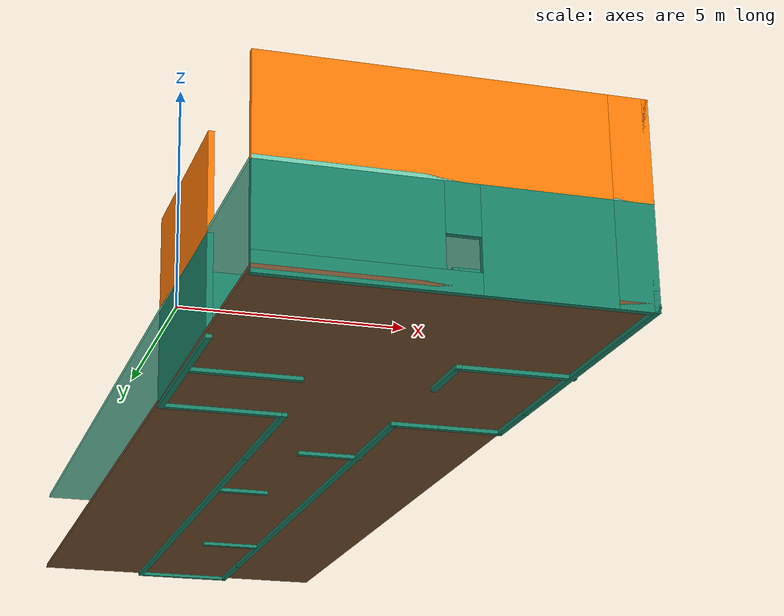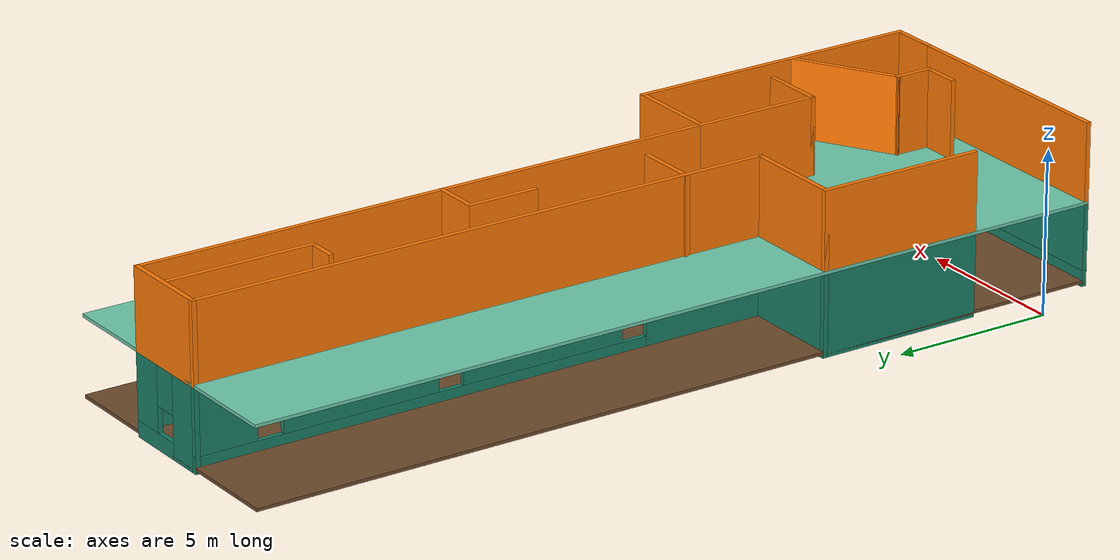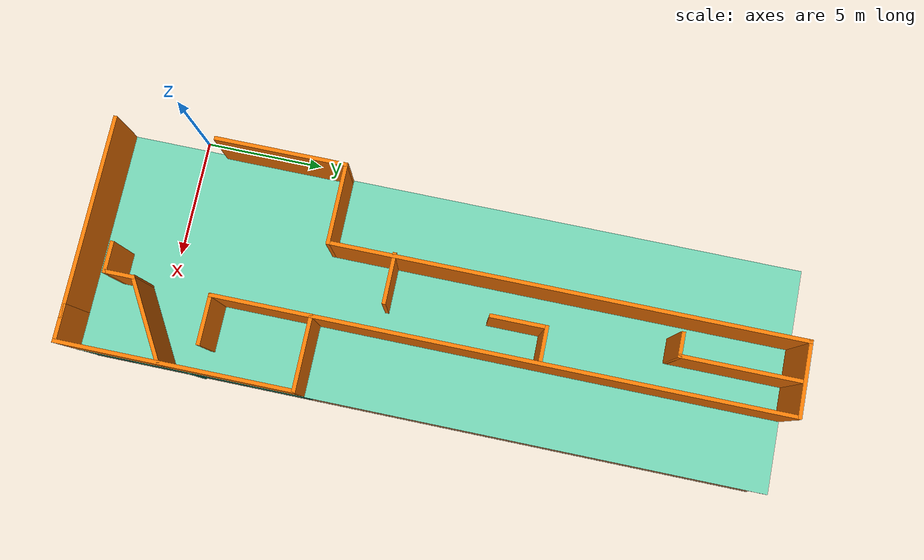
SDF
<?xml version='1.0'?>
<sdf version='1.7'>
  <model name='mulyi_floor_v2'>
    <pose>5.5 11.5 0 0 -0 -1.57</pose>
    <link name='Floor_2'>
      <collision name='Floor_2_Collision'>
        <geometry>
          <box>
            <size>27.6 8.96003 0.1</size>
          </box>
        </geometry>
        <pose>0 0 0.05 0 -0 0</pose>
      </collision>
      <visual name='Floor_2_Visual'>
        <pose>0 0 0.05 0 -0 0</pose>
        <geometry>
          <box>
            <size>27.6 8.96003 0.1</size>
          </box>
        </geometry>
        <material>
          <diffuse>0.435294 0.796078 0.67451 1</diffuse>
            <specular>0.435294 0.796078 0.67451 1</specular>
          <ambient>0.435294 0.796078 0.67451 1</ambient>
        </material>
        <meta>
          <layer>1</layer>
        </meta>
      </visual>
      <pose>0 -0.019886 2.5 0 -0 0</pose>
    </link>
    <link name='Floor_1'>
      <collision name='Floor_1_Collision'>
        <geometry>
          <box>
            <size>50.6 8.96003 0.1</size>
          </box>
        </geometry>
        <pose>0 0 0.05 0 -0 0</pose>
      </collision>
      <visual name='Floor_1_Visual'>
        <pose>0 0 0.05 0 -0 0</pose>
        <geometry>
          <box>
            <size>27.6 8.96003 0.1</size>
          </box>
        </geometry>
        <material>
          <diffuse>0.435294 0.296078 0.17451 1</diffuse>
            <specular>0.435294 0.296078 0.17451 1</specular>
          <ambient>0.435294 0.296078 0.17451 1</ambient>
        </material>
        <meta>
          <layer>0</layer>
        </meta>
      </visual>
      <pose>0 -0.019886 0.1 0 -0 0</pose>
    </link>
    <link name='Wall_101'>
      <collision name='Wall_101_Collision'>
        <geometry>
          <box>
            <size>5.25 0.15 2.5</size>
          </box>
        </geometry>
        <pose>0 0 1.25 0 -0 0</pose>
      </collision>
      <visual name='Wall_101_Visual'>
        <pose>0 0 1.25 0 -0 0</pose>
        <geometry>
          <box>
            <size>5.25 0.15 2.5</size>
          </box>
        </geometry>
        <material>
          <diffuse>0.098039 0.501960 0.400000 0.9</diffuse>
            <specular>0.098039 0.501960 0.400000 0.9</specular>
          <ambient>0.098039 0.501960 0.400000 0.9</ambient>
        </material>
        <meta>
          <layer>0</layer>
        </meta>
      </visual>
      <pose>7.175 -4.4249 0 0 -0 0</pose>
    </link>
    <link name='Wall_103'>
      <collision name='Wall_103_Collision'>
        <geometry>
          <box>
            <size>8 0.15 2.5</size>
          </box>
        </geometry>
        <pose>0 0 1.25 0 -0 0</pose>
      </collision>
      <visual name='Wall_103_Visual'>
        <pose>0 0 1.25 0 -0 0</pose>
        <geometry>
          <box>
            <size>8 0.15 2.5</size>
          </box>
        </geometry>
        <material>
          <diffuse>0.996078 0.47451 0.0196078 1</diffuse>
            <specular>0.996078 0.47451 0.0196078 1</specular>
          <ambient>0.996078 0.47451 0.0196078 1</ambient>
        </material>
        <meta>
          <layer>1</layer>
        </meta>
      </visual>
      <pose>13.725 -0.499902 2.5 0 -0 -1.5708</pose>
    </link>
    <link name='Wall_104'>
      <collision name='Wall_104_Collision'>
        <geometry>
          <box>
            <size>3.25 0.15 2.5</size>
          </box>
        </geometry>
        <pose>0 0 1.25 0 -0 0</pose>
      </collision>
      <visual name='Wall_104_Visual'>
        <pose>0 0 1.25 0 -0 0</pose>
        <geometry>
          <box>
            <size>3.25 0.15 2.5</size>
          </box>
        </geometry>
        <material>
          <diffuse>0.996078 0.47451 0.0196078 1</diffuse>
            <specular>0.996078 0.47451 0.0196078 1</specular>
          <ambient>0.996078 0.47451 0.0196078 1</ambient>
        </material>
        <meta>
          <layer>1</layer>
        </meta>
      </visual>
      <pose>4.625 -2.8749 2.5 0 -0 1.5708</pose>
    </link>
    <link name='Wall_105'>
      <collision name='Wall_105_Collision'>
        <geometry>
          <box>
            <size>18.5 0.15 2.5</size>
          </box>
        </geometry>
        <pose>0 0 1.25 0 -0 0</pose>
      </collision>
      <visual name='Wall_105_Visual'>
        <pose>0 0 1.25 0 -0 0</pose>
        <geometry>
          <box>
            <size>18.5 0.15 2.5</size>
          </box>
        </geometry>
        <material>
          <diffuse>0.996078 0.47451 0.0196078 1</diffuse>
            <specular>0.996078 0.47451 0.0196078 1</specular>
          <ambient>0.996078 0.47451 0.0196078 1</ambient>
        </material>
        <meta>
          <layer>1</layer>
        </meta>
      </visual>
      <pose>-4.55 -1.3249 2.5 0 -0 3.14159</pose>
    </link>
    <link name='Wall_106'>
      <collision name='Wall_106_Collision'>
        <geometry>
          <box>
            <size>3 0.15 2.5</size>
          </box>
        </geometry>
        <pose>0 0 1.25 0 -0 0</pose>
      </collision>
      <visual name='Wall_106_Visual'>
        <pose>0 0 1.25 0 -0 0</pose>
        <geometry>
          <box>
            <size>3 0.15 2.5</size>
          </box>
        </geometry>
        <material>
          <diffuse>0.996078 0.47451 0.0196078 1</diffuse>
            <specular>0.996078 0.47451 0.0196078 1</specular>
          <ambient>0.996078 0.47451 0.0196078 1</ambient>
        </material>
        <meta>
          <layer>1</layer>
        </meta>
      </visual>
      <pose>-13.725 0.100098 2.5 0 -0 1.5708</pose>
    </link>
    <link name='Wall_107'>
      <collision name='Wall_107_Collision'>
        <geometry>
          <box>
            <size>18.5 0.15 2.5</size>
          </box>
        </geometry>
        <pose>0 0 1.25 0 -0 0</pose>
      </collision>
      <visual name='Wall_107_Visual'>
        <pose>0 0 1.25 0 -0 0</pose>
        <geometry>
          <box>
            <size>18.5 0.15 2.5</size>
          </box>
        </geometry>
        <material>
          <diffuse>0.996078 0.47451 0.0196078 1</diffuse>
            <specular>0.996078 0.47451 0.0196078 1</specular>
          <ambient>0.996078 0.47451 0.0196078 1</ambient>
        </material>
        <meta>
          <layer>1</layer>
        </meta>
      </visual>
      <pose>-4.55 1.5251 2.5 0 -0 0</pose>
    </link>
    <link name='Wall_108'>
      <collision name='Wall_108_Collision'>
        <geometry>
          <box>
            <size>3 0.15 2.5</size>
          </box>
        </geometry>
        <pose>0 0 1.25 0 -0 0</pose>
      </collision>
      <visual name='Wall_108_Visual'>
        <pose>0 0 1.25 0 -0 0</pose>
        <geometry>
          <box>
            <size>3 0.15 2.5</size>
          </box>
        </geometry>
        <material>
          <diffuse>0.996078 0.47451 0.0196078 1</diffuse>
            <specular>0.996078 0.47451 0.0196078 1</specular>
          <ambient>0.996078 0.47451 0.0196078 1</ambient>
        </material>
        <meta>
          <layer>1</layer>
        </meta>
      </visual>
      <pose>4.625 2.9501 2.5 0 -0 1.5708</pose>
    </link>
    <link name='Wall_109'>
      <collision name='Wall_109_Collision'>
        <geometry>
          <box>
            <size>9.25 0.15 2.5</size>
          </box>
        </geometry>
        <pose>0 0 1.25 0 -0 0</pose>
      </collision>
      <visual name='Wall_109_Visual'>
        <pose>0 0 1.25 0 -0 0</pose>
        <geometry>
          <box>
            <size>9.25 0.15 2.5</size>
          </box>
        </geometry>
        <material>
          <diffuse>0.996078 0.47451 0.0196078 1</diffuse>
            <specular>0.996078 0.47451 0.0196078 1</specular>
          <ambient>0.996078 0.47451 0.0196078 1</ambient>
        </material>
        <meta>
          <layer>1</layer>
        </meta>
      </visual>
      <pose>9.175 4.3751 2.5 0 -0 0</pose>
    </link>
    <link name='Wall_110'>
      <collision name='Wall_110_Collision'>
        <geometry>
          <box>
            <size>1.5 0.15 2.5</size>
          </box>
        </geometry>
        <pose>0 0 1.25 0 -0 0</pose>
      </collision>
      <visual name='Wall_110_Visual'>
        <pose>0 0 1.25 0 -0 0</pose>
        <geometry>
          <box>
            <size>1.5 0.15 2.5</size>
          </box>
        </geometry>
        <material>
          <diffuse>0.996078 0.47451 0.0196078 1</diffuse>
            <specular>0.996078 0.47451 0.0196078 1</specular>
          <ambient>0.996078 0.47451 0.0196078 1</ambient>
        </material>
        <meta>
          <layer>1</layer>
        </meta>
      </visual>
      <pose>13.725 3.7001 2.5 0 -0 -1.5708</pose>
    </link>
    <link name='Wall_117'>
      <collision name='Wall_117_Collision'>
        <geometry>
          <box>
            <size>5.25 0.15 2.5</size>
          </box>
        </geometry>
        <pose>0 0 1.25 0 -0 0</pose>
      </collision>
      <visual name='Wall_117_Visual'>
        <pose>0 0 1.25 0 -0 0</pose>
        <geometry>
          <box>
            <size>5.25 0.15 2.5</size>
          </box>
        </geometry>
        <material>
          <diffuse>0.996078 0.47451 0.0196078 1</diffuse>
            <specular>0.996078 0.47451 0.0196078 1</specular>
          <ambient>0.996078 0.47451 0.0196078 1</ambient>
        </material>
        <meta>
          <layer>1</layer>
        </meta>
      </visual>
      <pose>7.175 -4.4249 2.5 0 -0 0</pose>
    </link>
    <link name='Wall_118'>
      <collision name='Wall_118_Collision'>
        <geometry>
          <box>
            <size>3.5 0.15 2.5</size>
          </box>
        </geometry>
        <pose>0 0 1.25 0 -0 0</pose>
      </collision>
      <visual name='Wall_118_Visual'>
        <pose>0 0 1.25 0 -0 0</pose>
        <geometry>
          <box>
            <size>3.5 0.15 2.5</size>
          </box>
        </geometry>
        <material>
          <diffuse>0.996078 0.47451 0.0196078 1</diffuse>
            <specular>0.996078 0.47451 0.0196078 1</specular>
          <ambient>0.996078 0.47451 0.0196078 1</ambient>
        </material>
        <meta>
          <layer>1</layer>
        </meta>
      </visual>
      <pose>10.6427 2.90709 2.5 0 -0 -1.0472</pose>
    </link>
    <link name='Wall_119'>
      <collision name='Wall_119_Collision'>
        <geometry>
          <box>
            <size>1.25 0.15 2.5</size>
          </box>
        </geometry>
        <pose>0 0 1.25 0 -0 0</pose>
      </collision>
      <visual name='Wall_119_Visual'>
        <pose>0 0 1.25 0 -0 0</pose>
        <geometry>
          <box>
            <size>1.25 0.15 2.5</size>
          </box>
        </geometry>
        <material>
          <diffuse>0.996078 0.47451 0.0196078 1</diffuse>
            <specular>0.996078 0.47451 0.0196078 1</specular>
          <ambient>0.996078 0.47451 0.0196078 1</ambient>
        </material>
        <meta>
          <layer>1</layer>
        </meta>
      </visual>
      <pose>12.0302 1.45649 2.5 0 -0 0</pose>
    </link>
    <link name='Wall_120'>
      <collision name='Wall_120_Collision'>
        <geometry>
          <box>
            <size>1.25 0.15 2.5</size>
          </box>
        </geometry>
        <pose>0 0 1.25 0 -0 0</pose>
      </collision>
      <visual name='Wall_120_Visual'>
        <pose>0 0 1.25 0 -0 0</pose>
        <geometry>
          <box>
            <size>1.25 0.15 2.5</size>
          </box>
        </geometry>
        <material>
          <diffuse>0.996078 0.47451 0.0196078 1</diffuse>
            <specular>0.996078 0.47451 0.0196078 1</specular>
          <ambient>0.996078 0.47451 0.0196078 1</ambient>
        </material>
        <meta>
          <layer>1</layer>
        </meta>
      </visual>
      <pose>12.5802 0.906493 2.5 0 -0 -1.5708</pose>
    </link>
    <link name='Wall_122'>
      <collision name='Wall_122_Collision'>
        <geometry>
          <box>
            <size>4 0.15 2.5</size>
          </box>
        </geometry>
        <pose>0 0 1.25 0 -0 0</pose>
      </collision>
      <visual name='Wall_122_Visual'>
        <pose>0 0 1.25 0 -0 0</pose>
        <geometry>
          <box>
            <size>4 0.15 2.5</size>
          </box>
        </geometry>
        <material>
          <diffuse>0.996078 0.47451 0.0196078 1</diffuse>
            <specular>0.996078 0.47451 0.0196078 1</specular>
          <ambient>0.996078 0.47451 0.0196078 1</ambient>
        </material>
        <meta>
          <layer>1</layer>
        </meta>
      </visual>
      <pose>6.55 1.5251 2.5 0 -0 0</pose>
    </link>
    <link name='Wall_123'>
      <collision name='Wall_123_Collision'>
        <geometry>
          <box>
            <size>2 0.15 2.5</size>
          </box>
        </geometry>
        <pose>0 0 1.25 0 -0 0</pose>
      </collision>
      <visual name='Wall_123_Visual'>
        <pose>0 0 1.25 0 -0 0</pose>
        <geometry>
          <box>
            <size>2 0.15 2.5</size>
          </box>
        </geometry>
        <material>
          <diffuse>0.996078 0.47451 0.0196078 1</diffuse>
            <specular>0.996078 0.47451 0.0196078 1</specular>
          <ambient>0.996078 0.47451 0.0196078 1</ambient>
        </material>
        <meta>
          <layer>1</layer>
        </meta>
      </visual>
      <pose>8.475 2.4501 2.5 0 -0 1.5708</pose>
    </link>
    <link name='Wall_125'>
      <collision name='Wall_125_Collision'>
        <geometry>
          <box>
            <size>4.75 0.15 2.5</size>
          </box>
        </geometry>
        <pose>0 0 1.25 0 -0 0</pose>
      </collision>
      <visual name='Wall_125_Visual'>
        <pose>0 0 1.25 0 -0 0</pose>
        <geometry>
          <box>
            <size>4.75 0.15 2.5</size>
          </box>
        </geometry>
        <material>
          <diffuse>0.996078 0.47451 0.0196078 1</diffuse>
            <specular>0.996078 0.47451 0.0196078 1</specular>
          <ambient>0.996078 0.47451 0.0196078 1</ambient>
        </material>
        <meta>
          <layer>1</layer>
        </meta>
      </visual>
      <pose>-11.3488 0.198419 2.5 0 -0 0</pose>
    </link>
    <link name='Wall_126'>
      <collision name='Wall_126_Collision'>
        <geometry>
          <box>
            <size>1 0.15 2.5</size>
          </box>
        </geometry>
        <pose>0 0 1.25 0 -0 0</pose>
      </collision>
      <visual name='Wall_126_Visual'>
        <pose>0 0 1.25 0 -0 0</pose>
        <geometry>
          <box>
            <size>1 0.15 2.5</size>
          </box>
        </geometry>
        <material>
          <diffuse>0.996078 0.47451 0.0196078 1</diffuse>
            <specular>0.996078 0.47451 0.0196078 1</specular>
          <ambient>0.996078 0.47451 0.0196078 1</ambient>
        </material>
        <meta>
          <layer>1</layer>
        </meta>
      </visual>
      <pose>-9.04878 -0.226581 2.5 0 -0 -1.5708</pose>
    </link>
    <link name='Wall_128'>
      <collision name='Wall_128_Collision'>
        <geometry>
          <box>
            <size>1.5 0.15 2.5</size>
          </box>
        </geometry>
        <pose>0 0 1.25 0 -0 0</pose>
      </collision>
      <visual name='Wall_128_Visual'>
        <pose>0 0 1.25 0 -0 0</pose>
        <geometry>
          <box>
            <size>1.5 0.15 2.5</size>
          </box>
        </geometry>
        <material>
          <diffuse>0.996078 0.47451 0.0196078 1</diffuse>
            <specular>0.996078 0.47451 0.0196078 1</specular>
          <ambient>0.996078 0.47451 0.0196078 1</ambient>
        </material>
        <meta>
          <layer>1</layer>
        </meta>
      </visual>
      <pose>-4.04498 0.825034 2.5 0 -0 -1.5708</pose>
    </link>
    <link name='Wall_129'>
      <collision name='Wall_129_Collision'>
        <geometry>
          <box>
            <size>2.25 0.15 2.5</size>
          </box>
        </geometry>
        <pose>0 0 1.25 0 -0 0</pose>
      </collision>
      <visual name='Wall_129_Visual'>
        <pose>0 0 1.25 0 -0 0</pose>
        <geometry>
          <box>
            <size>2.25 0.15 2.5</size>
          </box>
        </geometry>
        <material>
          <diffuse>0.996078 0.47451 0.0196078 1</diffuse>
            <specular>0.996078 0.47451 0.0196078 1</specular>
          <ambient>0.996078 0.47451 0.0196078 1</ambient>
        </material>
        <meta>
          <layer>1</layer>
        </meta>
      </visual>
      <pose>-2.99498 0.150034 2.5 0 -0 0</pose>
    </link>
    <link name='Wall_131'>
      <collision name='Wall_131_Collision'>
        <geometry>
          <box>
            <size>2 0.15 2.5</size>
          </box>
        </geometry>
        <pose>0 0 1.25 0 -0 0</pose>
      </collision>
      <visual name='Wall_131_Visual'>
        <pose>0 0 1.25 0 -0 0</pose>
        <geometry>
          <box>
            <size>2 0.15 2.5</size>
          </box>
        </geometry>
        <material>
          <diffuse>0.996078 0.47451 0.0196078 1</diffuse>
            <specular>0.996078 0.47451 0.0196078 1</specular>
          <ambient>0.996078 0.47451 0.0196078 1</ambient>
        </material>
        <meta>
          <layer>1</layer>
        </meta>
      </visual>
      <pose>2.07613 -0.459625 2.5 0 -0 1.5708</pose>
    </link>
    <link name='Wall_80'>
      <pose>13.725 -0.499903 0 0 -0 -1.5708</pose>
      <visual name='Wall_80_Visual_0'>
        <pose>-2.48119 0 1.25 0 -0 0</pose>
        <geometry>
          <box>
            <size>3.03763 0.15 2.5</size>
          </box>
        </geometry>
        <material>
          <diffuse>0.098039 0.501960 0.400000 0.9</diffuse>
            <specular>0.098039 0.501960 0.400000 0.9</specular>
          <ambient>0.098039 0.501960 0.400000 0.9</ambient>
        </material>
        <meta>
          <layer>0</layer>
        </meta>
      </visual>
      <collision name='Wall_80_Collision_0'>
        <geometry>
          <box>
            <size>3.03763 0.15 2.5</size>
          </box>
        </geometry>
        <pose>-2.48119 0 1.25 0 -0 0</pose>
      </collision>
      <visual name='Wall_80_Visual_1'>
        <pose>1.51881 0 0.25 0 -0 0</pose>
        <geometry>
          <box>
            <size>4.96237 0.15 0.5</size>
          </box>
        </geometry>
        <material>
          <diffuse>0.098039 0.501960 0.400000 0.9</diffuse>
            <specular>0.098039 0.501960 0.400000 0.9</specular>
          <ambient>0.098039 0.501960 0.400000 0.9</ambient>
        </material>
        <meta>
          <layer>0</layer>
        </meta>
      </visual>
      <collision name='Wall_80_Collision_1'>
        <geometry>
          <box>
            <size>4.96237 0.15 0.5</size>
          </box>
        </geometry>
        <pose>1.51881 0 0.25 0 -0 0</pose>
      </collision>
      <visual name='Wall_80_Visual_2'>
        <pose>1.91881 0 1.5 0 -0 0</pose>
        <geometry>
          <box>
            <size>4.16237 0.15 2</size>
          </box>
        </geometry>
        <material>
          <diffuse>0.098039 0.501960 0.400000 0.9</diffuse>
            <specular>0.098039 0.501960 0.400000 0.9</specular>
          <ambient>0.098039 0.501960 0.400000 0.9</ambient>
        </material>
        <meta>
          <layer>0</layer>
        </meta>
      </visual>
      <collision name='Wall_80_Collision_2'>
        <geometry>
          <box>
            <size>4.16237 0.15 2</size>
          </box>
        </geometry>
        <pose>1.91881 0 1.5 0 -0 0</pose>
      </collision>
      <visual name='Wall_80_Visual_3'>
        <pose>-0.562373 0 1.9 0 -0 0</pose>
        <geometry>
          <box>
            <size>0.8 0.15 1.2</size>
          </box>
        </geometry>
        <material>
          <diffuse>0.098039 0.501960 0.400000 0.9</diffuse>
            <specular>0.098039 0.501960 0.400000 0.9</specular>
          <ambient>0.098039 0.501960 0.400000 0.9</ambient>
        </material>
        <meta>
          <layer>0</layer>
        </meta>
      </visual>
      <collision name='Wall_80_Collision_3'>
        <geometry>
          <box>
            <size>0.8 0.15 1.2</size>
          </box>
        </geometry>
        <pose>-0.562373 0 1.9 0 -0 0</pose>
      </collision>
    </link>
    <link name='Wall_82'>
      <collision name='Wall_82_Collision'>
        <geometry>
          <box>
            <size>3.25 0.15 2.5</size>
          </box>
        </geometry>
        <pose>0 0 1.25 0 -0 0</pose>
      </collision>
      <visual name='Wall_82_Visual'>
        <pose>0 0 1.25 0 -0 0</pose>
        <geometry>
          <box>
            <size>3.25 0.15 2.5</size>
          </box>
        </geometry>
        <material>
          <diffuse>0.098039 0.501960 0.400000 0.9</diffuse>
            <specular>0.098039 0.501960 0.400000 0.9</specular>
          <ambient>0.098039 0.501960 0.400000 0.9</ambient>
        </material>
        <meta>
          <layer>0</layer>
        </meta>
      </visual>
      <pose>4.625 -2.8749 0 0 -0 1.5708</pose>
    </link>
    <link name='Wall_83'>
      <pose>-4.55 -1.3249 0 0 -0 3.14159</pose>
      <visual name='Wall_83_Visual_0'>
        <pose>-7.2701 0 1.25 0 -0 0</pose>
        <geometry>
          <box>
            <size>3.9598 0.15 2.5</size>
          </box>
        </geometry>
        <material>
          <diffuse>0.098039 0.501960 0.400000 0.9</diffuse>
            <specular>0.098039 0.501960 0.400000 0.9</specular>
          <ambient>0.098039 0.501960 0.400000 0.9</ambient>
        </material>
        <meta>
          <layer>0</layer>
        </meta>
      </visual>
      <collision name='Wall_83_Collision_0'>
        <geometry>
          <box>
            <size>3.9598 0.15 2.5</size>
          </box>
        </geometry>
        <pose>-7.2701 0 1.25 0 -0 0</pose>
      </collision>
      <visual name='Wall_83_Visual_1'>
        <pose>1.9799 0 0.25 0 -0 0</pose>
        <geometry>
          <box>
            <size>14.5402 0.15 0.5</size>
          </box>
        </geometry>
        <material>
          <diffuse>0.098039 0.501960 0.400000 0.9</diffuse>
            <specular>0.098039 0.501960 0.400000 0.9</specular>
          <ambient>0.098039 0.501960 0.400000 0.9</ambient>
        </material>
        <meta>
          <layer>0</layer>
        </meta>
      </visual>
      <collision name='Wall_83_Collision_1'>
        <geometry>
          <box>
            <size>14.5402 0.15 0.5</size>
          </box>
        </geometry>
        <pose>1.9799 0 0.25 0 -0 0</pose>
      </collision>
      <visual name='Wall_83_Visual_2'>
        <pose>-1.87107 0 1.5 0 -0 0</pose>
        <geometry>
          <box>
            <size>5.23825 0.15 2</size>
          </box>
        </geometry>
        <material>
          <diffuse>0.098039 0.501960 0.400000 0.9</diffuse>
            <specular>0.098039 0.501960 0.400000 0.9</specular>
          <ambient>0.098039 0.501960 0.400000 0.9</ambient>
        </material>
        <meta>
          <layer>0</layer>
        </meta>
      </visual>
      <collision name='Wall_83_Collision_2'>
        <geometry>
          <box>
            <size>5.23825 0.15 2</size>
          </box>
        </geometry>
        <pose>-1.87107 0 1.5 0 -0 0</pose>
      </collision>
      <visual name='Wall_83_Visual_3'>
        <pose>4.02087 0 1.5 0 -0 0</pose>
        <geometry>
          <box>
            <size>4.94564 0.15 2</size>
          </box>
        </geometry>
        <material>
          <diffuse>0.098039 0.501960 0.400000 0.9</diffuse>
            <specular>0.098039 0.501960 0.400000 0.9</specular>
          <ambient>0.098039 0.501960 0.400000 0.9</ambient>
        </material>
        <meta>
          <layer>0</layer>
        </meta>
      </visual>
      <collision name='Wall_83_Collision_3'>
        <geometry>
          <box>
            <size>4.94564 0.15 2</size>
          </box>
        </geometry>
        <pose>4.02087 0 1.5 0 -0 0</pose>
      </collision>
      <visual name='Wall_83_Visual_4'>
        <pose>8.27185 0 1.5 0 -0 0</pose>
        <geometry>
          <box>
            <size>1.95631 0.15 2</size>
          </box>
        </geometry>
        <material>
          <diffuse>0.098039 0.501960 0.400000 0.9</diffuse>
            <specular>0.098039 0.501960 0.400000 0.9</specular>
          <ambient>0.098039 0.501960 0.400000 0.9</ambient>
        </material>
        <meta>
          <layer>0</layer>
        </meta>
      </visual>
      <collision name='Wall_83_Collision_4'>
        <geometry>
          <box>
            <size>1.95631 0.15 2</size>
          </box>
        </geometry>
        <pose>8.27185 0 1.5 0 -0 0</pose>
      </collision>
      <visual name='Wall_83_Visual_5'>
        <pose>-4.8902 0 1.9 0 -0 0</pose>
        <geometry>
          <box>
            <size>0.8 0.15 1.2</size>
          </box>
        </geometry>
        <material>
          <diffuse>0.098039 0.501960 0.400000 0.9</diffuse>
            <specular>0.098039 0.501960 0.400000 0.9</specular>
          <ambient>0.098039 0.501960 0.400000 0.9</ambient>
        </material>
        <meta>
          <layer>0</layer>
        </meta>
      </visual>
      <collision name='Wall_83_Collision_5'>
        <geometry>
          <box>
            <size>0.8 0.15 1.2</size>
          </box>
        </geometry>
        <pose>-4.8902 0 1.9 0 -0 0</pose>
      </collision>
      <visual name='Wall_83_Visual_6'>
        <pose>1.14805 0 1.9 0 -0 0</pose>
        <geometry>
          <box>
            <size>0.8 0.15 1.2</size>
          </box>
        </geometry>
        <material>
          <diffuse>0.098039 0.501960 0.400000 0.9</diffuse>
            <specular>0.098039 0.501960 0.400000 0.9</specular>
          <ambient>0.098039 0.501960 0.400000 0.9</ambient>
        </material>
        <meta>
          <layer>0</layer>
        </meta>
      </visual>
      <collision name='Wall_83_Collision_6'>
        <geometry>
          <box>
            <size>0.8 0.15 1.2</size>
          </box>
        </geometry>
        <pose>1.14805 0 1.9 0 -0 0</pose>
      </collision>
      <visual name='Wall_83_Visual_7'>
        <pose>6.89369 0 1.9 0 -0 0</pose>
        <geometry>
          <box>
            <size>0.8 0.15 1.2</size>
          </box>
        </geometry>
        <material>
          <diffuse>0.098039 0.501960 0.400000 0.9</diffuse>
            <specular>0.098039 0.501960 0.400000 0.9</specular>
          <ambient>0.098039 0.501960 0.400000 0.9</ambient>
        </material>
        <meta>
          <layer>0</layer>
        </meta>
      </visual>
      <collision name='Wall_83_Collision_7'>
        <geometry>
          <box>
            <size>0.8 0.15 1.2</size>
          </box>
        </geometry>
        <pose>6.89369 0 1.9 0 -0 0</pose>
      </collision>
    </link>
    <link name='Wall_84'>
      <pose>-13.725 0.100097 0 0 -0 1.5708</pose>
      <visual name='Wall_84_Visual_0'>
        <pose>-0.928913 0 1.25 0 -0 0</pose>
        <geometry>
          <box>
            <size>1.14217 0.15 2.5</size>
          </box>
        </geometry>
        <material>
          <diffuse>0.098039 0.501960 0.400000 0.9</diffuse>
            <specular>0.098039 0.501960 0.400000 0.9</specular>
          <ambient>0.098039 0.501960 0.400000 0.9</ambient>
        </material>
        <meta>
          <layer>0</layer>
        </meta>
      </visual>
      <collision name='Wall_84_Collision_0'>
        <geometry>
          <box>
            <size>1.14217 0.15 2.5</size>
          </box>
        </geometry>
        <pose>-0.928913 0 1.25 0 -0 0</pose>
      </collision>
      <visual name='Wall_84_Visual_1'>
        <pose>0.571087 0 0.25 0 -0 0</pose>
        <geometry>
          <box>
            <size>1.85783 0.15 0.5</size>
          </box>
        </geometry>
        <material>
          <diffuse>0.098039 0.501960 0.400000 0.9</diffuse>
            <specular>0.098039 0.501960 0.400000 0.9</specular>
          <ambient>0.098039 0.501960 0.400000 0.9</ambient>
        </material>
        <meta>
          <layer>0</layer>
        </meta>
      </visual>
      <collision name='Wall_84_Collision_1'>
        <geometry>
          <box>
            <size>1.85783 0.15 0.5</size>
          </box>
        </geometry>
        <pose>0.571087 0 0.25 0 -0 0</pose>
      </collision>
      <visual name='Wall_84_Visual_2'>
        <pose>0.971087 0 1.5 0 -0 0</pose>
        <geometry>
          <box>
            <size>1.05783 0.15 2</size>
          </box>
        </geometry>
        <material>
          <diffuse>0.098039 0.501960 0.400000 0.9</diffuse>
            <specular>0.098039 0.501960 0.400000 0.9</specular>
          <ambient>0.098039 0.501960 0.400000 0.9</ambient>
        </material>
        <meta>
          <layer>0</layer>
        </meta>
      </visual>
      <collision name='Wall_84_Collision_2'>
        <geometry>
          <box>
            <size>1.05783 0.15 2</size>
          </box>
        </geometry>
        <pose>0.971087 0 1.5 0 -0 0</pose>
      </collision>
      <visual name='Wall_84_Visual_3'>
        <pose>0.042174 0 1.9 0 -0 0</pose>
        <geometry>
          <box>
            <size>0.8 0.15 1.2</size>
          </box>
        </geometry>
        <material>
          <diffuse>0.098039 0.501960 0.400000 0.9</diffuse>
            <specular>0.098039 0.501960 0.400000 0.9</specular>
          <ambient>0.098039 0.501960 0.400000 0.9</ambient>
        </material>
        <meta>
          <layer>0</layer>
        </meta>
      </visual>
      <collision name='Wall_84_Collision_3'>
        <geometry>
          <box>
            <size>0.8 0.15 1.2</size>
          </box>
        </geometry>
        <pose>0.042174 0 1.9 0 -0 0</pose>
      </collision>
    </link>
    <link name='Wall_85'>
      <pose>-4.55 1.5251 0 0 -0 0</pose>
      <visual name='Wall_85_Visual_0'>
        <pose>-8.20534 0 1.25 0 -0 0</pose>
        <geometry>
          <box>
            <size>2.08931 0.15 2.5</size>
          </box>
        </geometry>
        <material>
          <diffuse>0.098039 0.501960 0.400000 0.9</diffuse>
            <specular>0.098039 0.501960 0.400000 0.9</specular>
          <ambient>0.098039 0.501960 0.400000 0.9</ambient>
        </material>
        <meta>
          <layer>0</layer>
        </meta>
      </visual>
      <collision name='Wall_85_Collision_0'>
        <geometry>
          <box>
            <size>2.08931 0.15 2.5</size>
          </box>
        </geometry>
        <pose>-8.20534 0 1.25 0 -0 0</pose>
      </collision>
      <visual name='Wall_85_Visual_1'>
        <pose>1.04465 0 0.25 0 -0 0</pose>
        <geometry>
          <box>
            <size>16.4107 0.15 0.5</size>
          </box>
        </geometry>
        <material>
          <diffuse>0.098039 0.501960 0.400000 0.9</diffuse>
            <specular>0.098039 0.501960 0.400000 0.9</specular>
          <ambient>0.098039 0.501960 0.400000 0.9</ambient>
        </material>
        <meta>
          <layer>0</layer>
        </meta>
      </visual>
      <collision name='Wall_85_Collision_1'>
        <geometry>
          <box>
            <size>16.4107 0.15 0.5</size>
          </box>
        </geometry>
        <pose>1.04465 0 0.25 0 -0 0</pose>
      </collision>
      <visual name='Wall_85_Visual_2'>
        <pose>-3.54207 0 1.5 0 -0 0</pose>
        <geometry>
          <box>
            <size>5.63725 0.15 2</size>
          </box>
        </geometry>
        <material>
          <diffuse>0.098039 0.501960 0.400000 0.9</diffuse>
            <specular>0.098039 0.501960 0.400000 0.9</specular>
          <ambient>0.098039 0.501960 0.400000 0.9</ambient>
        </material>
        <meta>
          <layer>0</layer>
        </meta>
      </visual>
      <collision name='Wall_85_Collision_2'>
        <geometry>
          <box>
            <size>5.63725 0.15 2</size>
          </box>
        </geometry>
        <pose>-3.54207 0 1.5 0 -0 0</pose>
      </collision>
      <visual name='Wall_85_Visual_3'>
        <pose>4.66328 0 1.5 0 -0 0</pose>
        <geometry>
          <box>
            <size>9.17344 0.15 2</size>
          </box>
        </geometry>
        <material>
          <diffuse>0.098039 0.501960 0.400000 0.9</diffuse>
            <specular>0.098039 0.501960 0.400000 0.9</specular>
          <ambient>0.098039 0.501960 0.400000 0.9</ambient>
        </material>
        <meta>
          <layer>0</layer>
        </meta>
      </visual>
      <collision name='Wall_85_Collision_3'>
        <geometry>
          <box>
            <size>9.17344 0.15 2</size>
          </box>
        </geometry>
        <pose>4.66328 0 1.5 0 -0 0</pose>
      </collision>
      <visual name='Wall_85_Visual_4'>
        <pose>-6.76069 0 1.9 0 -0 0</pose>
        <geometry>
          <box>
            <size>0.8 0.15 1.2</size>
          </box>
        </geometry>
        <material>
          <diffuse>0.098039 0.501960 0.400000 0.9</diffuse>
            <specular>0.098039 0.501960 0.400000 0.9</specular>
          <ambient>0.098039 0.501960 0.400000 0.9</ambient>
        </material>
        <meta>
          <layer>0</layer>
        </meta>
      </visual>
      <collision name='Wall_85_Collision_4'>
        <geometry>
          <box>
            <size>0.8 0.15 1.2</size>
          </box>
        </geometry>
        <pose>-6.76069 0 1.9 0 -0 0</pose>
      </collision>
      <visual name='Wall_85_Visual_5'>
        <pose>-0.323442 0 1.9 0 -0 0</pose>
        <geometry>
          <box>
            <size>0.8 0.15 1.2</size>
          </box>
        </geometry>
        <material>
          <diffuse>0.098039 0.501960 0.400000 0.9</diffuse>
            <specular>0.098039 0.501960 0.400000 0.9</specular>
          <ambient>0.098039 0.501960 0.400000 0.9</ambient>
        </material>
        <meta>
          <layer>0</layer>
        </meta>
      </visual>
      <collision name='Wall_85_Collision_5'>
        <geometry>
          <box>
            <size>0.8 0.15 1.2</size>
          </box>
        </geometry>
        <pose>-0.323442 0 1.9 0 -0 0</pose>
      </collision>
    </link>
    <link name='Wall_86'>
      <pose>4.625 2.9501 0 0 -0 1.5708</pose>
      <visual name='Wall_86_Visual_0'>
        <pose>-0.877602 0 1.25 0 -0 0</pose>
        <geometry>
          <box>
            <size>1.2448 0.15 2.5</size>
          </box>
        </geometry>
        <material>
          <diffuse>0.098039 0.501960 0.400000 0.9</diffuse>
            <specular>0.098039 0.501960 0.400000 0.9</specular>
          <ambient>0.098039 0.501960 0.400000 0.9</ambient>
        </material>
        <meta>
          <layer>0</layer>
        </meta>
      </visual>
      <collision name='Wall_86_Collision_0'>
        <geometry>
          <box>
            <size>1.2448 0.15 2.5</size>
          </box>
        </geometry>
        <pose>-0.877602 0 1.25 0 -0 0</pose>
      </collision>
      <visual name='Wall_86_Visual_1'>
        <pose>0.622398 0 0.25 0 -0 0</pose>
        <geometry>
          <box>
            <size>1.7552 0.15 0.5</size>
          </box>
        </geometry>
        <material>
          <diffuse>0.098039 0.501960 0.400000 0.9</diffuse>
            <specular>0.098039 0.501960 0.400000 0.9</specular>
          <ambient>0.098039 0.501960 0.400000 0.9</ambient>
        </material>
        <meta>
          <layer>0</layer>
        </meta>
      </visual>
      <collision name='Wall_86_Collision_1'>
        <geometry>
          <box>
            <size>1.7552 0.15 0.5</size>
          </box>
        </geometry>
        <pose>0.622398 0 0.25 0 -0 0</pose>
      </collision>
      <visual name='Wall_86_Visual_2'>
        <pose>1.0224 0 1.5 0 -0 0</pose>
        <geometry>
          <box>
            <size>0.955204 0.15 2</size>
          </box>
        </geometry>
        <material>
          <diffuse>0.098039 0.501960 0.400000 0.9</diffuse>
            <specular>0.098039 0.501960 0.400000 0.9</specular>
          <ambient>0.098039 0.501960 0.400000 0.9</ambient>
        </material>
        <meta>
          <layer>0</layer>
        </meta>
      </visual>
      <collision name='Wall_86_Collision_2'>
        <geometry>
          <box>
            <size>0.955204 0.15 2</size>
          </box>
        </geometry>
        <pose>1.0224 0 1.5 0 -0 0</pose>
      </collision>
      <visual name='Wall_86_Visual_3'>
        <pose>0.144796 0 1.9 0 -0 0</pose>
        <geometry>
          <box>
            <size>0.8 0.15 1.2</size>
          </box>
        </geometry>
        <material>
          <diffuse>0.098039 0.501960 0.400000 0.9</diffuse>
            <specular>0.098039 0.501960 0.400000 0.9</specular>
          <ambient>0.098039 0.501960 0.400000 0.9</ambient>
        </material>
        <meta>
          <layer>0</layer>
        </meta>
      </visual>
      <collision name='Wall_86_Collision_3'>
        <geometry>
          <box>
            <size>0.8 0.15 1.2</size>
          </box>
        </geometry>
        <pose>0.144796 0 1.9 0 -0 0</pose>
      </collision>
    </link>
    <link name='Wall_87'>
      <pose>9.175 4.3751 0 0 -0 0</pose>
      <visual name='Wall_87_Visual_0'>
        <pose>-3.71128 0 1.25 0 -0 0</pose>
        <geometry>
          <box>
            <size>1.82744 0.15 2.5</size>
          </box>
        </geometry>
        <material>
          <diffuse>0.098039 0.501960 0.400000 0.9</diffuse>
            <specular>0.098039 0.501960 0.400000 0.9</specular>
          <ambient>0.098039 0.501960 0.400000 0.9</ambient>
        </material>
        <meta>
          <layer>0</layer>
        </meta>
      </visual>
      <collision name='Wall_87_Collision_0'>
        <geometry>
          <box>
            <size>1.82744 0.15 2.5</size>
          </box>
        </geometry>
        <pose>-3.71128 0 1.25 0 -0 0</pose>
      </collision>
      <visual name='Wall_87_Visual_1'>
        <pose>0.913722 0 0.25 0 -0 0</pose>
        <geometry>
          <box>
            <size>7.42256 0.15 0.5</size>
          </box>
        </geometry>
        <material>
          <diffuse>0.098039 0.501960 0.400000 0.9</diffuse>
            <specular>0.098039 0.501960 0.400000 0.9</specular>
          <ambient>0.098039 0.501960 0.400000 0.9</ambient>
        </material>
        <meta>
          <layer>0</layer>
        </meta>
      </visual>
      <collision name='Wall_87_Collision_1'>
        <geometry>
          <box>
            <size>7.42256 0.15 0.5</size>
          </box>
        </geometry>
        <pose>0.913722 0 0.25 0 -0 0</pose>
      </collision>
      <visual name='Wall_87_Visual_2'>
        <pose>0.049663 0 1.5 0 -0 0</pose>
        <geometry>
          <box>
            <size>4.09444 0.15 2</size>
          </box>
        </geometry>
        <material>
          <diffuse>0.098039 0.501960 0.400000 0.9</diffuse>
            <specular>0.098039 0.501960 0.400000 0.9</specular>
          <ambient>0.098039 0.501960 0.400000 0.9</ambient>
        </material>
        <meta>
          <layer>0</layer>
        </meta>
      </visual>
      <collision name='Wall_87_Collision_2'>
        <geometry>
          <box>
            <size>4.09444 0.15 2</size>
          </box>
        </geometry>
        <pose>0.049663 0 1.5 0 -0 0</pose>
      </collision>
      <visual name='Wall_87_Visual_3'>
        <pose>3.76094 0 1.5 0 -0 0</pose>
        <geometry>
          <box>
            <size>1.72812 0.15 2</size>
          </box>
        </geometry>
        <material>
          <diffuse>0.098039 0.501960 0.400000 0.9</diffuse>
            <specular>0.098039 0.501960 0.400000 0.9</specular>
          <ambient>0.098039 0.501960 0.400000 0.9</ambient>
        </material>
        <meta>
          <layer>0</layer>
        </meta>
      </visual>
      <collision name='Wall_87_Collision_3'>
        <geometry>
          <box>
            <size>1.72812 0.15 2</size>
          </box>
        </geometry>
        <pose>3.76094 0 1.5 0 -0 0</pose>
      </collision>
      <visual name='Wall_87_Visual_4'>
        <pose>-2.39756 0 1.9 0 -0 0</pose>
        <geometry>
          <box>
            <size>0.8 0.15 1.2</size>
          </box>
        </geometry>
        <material>
          <diffuse>0.098039 0.501960 0.400000 0.9</diffuse>
            <specular>0.098039 0.501960 0.400000 0.9</specular>
          <ambient>0.098039 0.501960 0.400000 0.9</ambient>
        </material>
        <meta>
          <layer>0</layer>
        </meta>
      </visual>
      <collision name='Wall_87_Collision_4'>
        <geometry>
          <box>
            <size>0.8 0.15 1.2</size>
          </box>
        </geometry>
        <pose>-2.39756 0 1.9 0 -0 0</pose>
      </collision>
      <visual name='Wall_87_Visual_5'>
        <pose>2.49688 0 1.9 0 -0 0</pose>
        <geometry>
          <box>
            <size>0.8 0.15 1.2</size>
          </box>
        </geometry>
        <material>
          <diffuse>0.098039 0.501960 0.400000 0.9</diffuse>
            <specular>0.098039 0.501960 0.400000 0.9</specular>
          <ambient>0.098039 0.501960 0.400000 0.9</ambient>
        </material>
        <meta>
          <layer>0</layer>
        </meta>
      </visual>
      <collision name='Wall_87_Collision_5'>
        <geometry>
          <box>
            <size>0.8 0.15 1.2</size>
          </box>
        </geometry>
        <pose>2.49688 0 1.9 0 -0 0</pose>
      </collision>
    </link>
    <link name='Wall_88'>
      <collision name='Wall_88_Collision'>
        <geometry>
          <box>
            <size>1.5 0.15 2.5</size>
          </box>
        </geometry>
        <pose>0 0 1.25 0 -0 0</pose>
      </collision>
      <visual name='Wall_88_Visual'>
        <pose>0 0 1.25 0 -0 0</pose>
        <geometry>
          <box>
            <size>1.5 0.15 2.5</size>
          </box>
        </geometry>
        <material>
          <diffuse>0.098039 0.501960 0.400000 0.9</diffuse>
            <specular>0.098039 0.501960 0.400000 0.9</specular>
          <ambient>0.098039 0.501960 0.400000 0.9</ambient>
        </material>
        <meta>
          <layer>0</layer>
        </meta>
      </visual>
      <pose>13.725 3.7001 0 0 -0 -1.5708</pose>
    </link>
    <link name='Wall_90'>
      <collision name='Wall_90_Collision'>
        <geometry>
          <box>
            <size>1.75 0.15 2.5</size>
          </box>
        </geometry>
        <pose>0 0 1.25 0 -0 0</pose>
      </collision>
      <visual name='Wall_90_Visual'>
        <pose>0 0 1.25 0 -0 0</pose>
        <geometry>
          <box>
            <size>1.75 0.15 2.5</size>
          </box>
        </geometry>
        <material>
          <diffuse>0.098039 0.501960 0.400000 0.9</diffuse>
            <specular>0.098039 0.501960 0.400000 0.9</specular>
          <ambient>0.098039 0.501960 0.400000 0.9</ambient>
        </material>
        <meta>
          <layer>0</layer>
        </meta>
      </visual>
      <pose>-8.99647 0.619081 0 0 -0 -1.5708</pose>
    </link>
    <link name='Wall_92'>
      <collision name='Wall_92_Collision'>
        <geometry>
          <box>
            <size>1.5 0.15 2.5</size>
          </box>
        </geometry>
        <pose>0 0 1.25 0 -0 0</pose>
      </collision>
      <visual name='Wall_92_Visual'>
        <pose>0 0 1.25 0 -0 0</pose>
        <geometry>
          <box>
            <size>1.5 0.15 2.5</size>
          </box>
        </geometry>
        <material>
          <diffuse>0.098039 0.501960 0.400000 0.9</diffuse>
            <specular>0.098039 0.501960 0.400000 0.9</specular>
          <ambient>0.098039 0.501960 0.400000 0.9</ambient>
        </material>
        <meta>
          <layer>0</layer>
        </meta>
      </visual>
      <pose>-2.61242 -0.612529 0 0 -0 -1.5708</pose>
    </link>
    <link name='Wall_94'>
      <collision name='Wall_94_Collision'>
        <geometry>
          <box>
            <size>1.75 0.15 2.5</size>
          </box>
        </geometry>
        <pose>0 0 1.25 0 -0 0</pose>
      </collision>
      <visual name='Wall_94_Visual'>
        <pose>0 0 1.25 0 -0 0</pose>
        <geometry>
          <box>
            <size>1.75 0.15 2.5</size>
          </box>
        </geometry>
        <material>
          <diffuse>0.098039 0.501960 0.400000 0.9</diffuse>
            <specular>0.098039 0.501960 0.400000 0.9</specular>
          <ambient>0.098039 0.501960 0.400000 0.9</ambient>
        </material>
        <meta>
          <layer>0</layer>
        </meta>
      </visual>
      <pose>1.51061 0.778682 0 0 -0 -1.5708</pose>
    </link>
    <link name='Wall_96'>
      <collision name='Wall_96_Collision'>
        <geometry>
          <box>
            <size>3 0.15 2.5</size>
          </box>
        </geometry>
        <pose>0 0 1.25 0 -0 0</pose>
      </collision>
      <visual name='Wall_96_Visual'>
        <pose>0 0 1.25 0 -0 0</pose>
        <geometry>
          <box>
            <size>3 0.15 2.5</size>
          </box>
        </geometry>
        <material>
          <diffuse>0.098039 0.501960 0.400000 0.9</diffuse>
            <specular>0.098039 0.501960 0.400000 0.9</specular>
          <ambient>0.098039 0.501960 0.400000 0.9</ambient>
        </material>
        <meta>
          <layer>0</layer>
        </meta>
      </visual>
      <pose>9.19806 2.9999 0 0 -0 -1.5708</pose>
    </link>
    <link name='Wall_97'>
      <collision name='Wall_97_Collision'>
        <geometry>
          <box>
            <size>1.75 0.15 2.5</size>
          </box>
        </geometry>
        <pose>0 0 1.25 0 -0 0</pose>
      </collision>
      <visual name='Wall_97_Visual'>
        <pose>0 0 1.25 0 -0 0</pose>
        <geometry>
          <box>
            <size>1.75 0.15 2.5</size>
          </box>
        </geometry>
        <material>
          <diffuse>0.098039 0.501960 0.400000 0.9</diffuse>
            <specular>0.098039 0.501960 0.400000 0.9</specular>
          <ambient>0.098039 0.501960 0.400000 0.9</ambient>
        </material>
        <meta>
          <layer>0</layer>
        </meta>
      </visual>
      <pose>8.39806 1.5749 0 0 -0 3.14159</pose>
    </link>
    <link name='Wall_99'>
      <collision name='Wall_99_Collision'>
        <geometry>
          <box>
            <size>2.75 0.15 2.5</size>
          </box>
        </geometry>
        <pose>0 0 1.25 0 -0 0</pose>
      </collision>
      <visual name='Wall_99_Visual'>
        <pose>0 0 1.25 0 -0 0</pose>
        <geometry>
          <box>
            <size>2.75 0.15 2.5</size>
          </box>
        </geometry>
        <material>
          <diffuse>0.098039 0.501960 0.400000 0.9</diffuse>
            <specular>0.098039 0.501960 0.400000 0.9</specular>
          <ambient>0.098039 0.501960 0.400000 0.9</ambient>
        </material>
        <meta>
          <layer>0</layer>
        </meta>
      </visual>
      <pose>7.44245 -2.99996 0 0 -0 1.5708</pose>
    </link>
    <static>1</static>
  </model>
</sdf>
